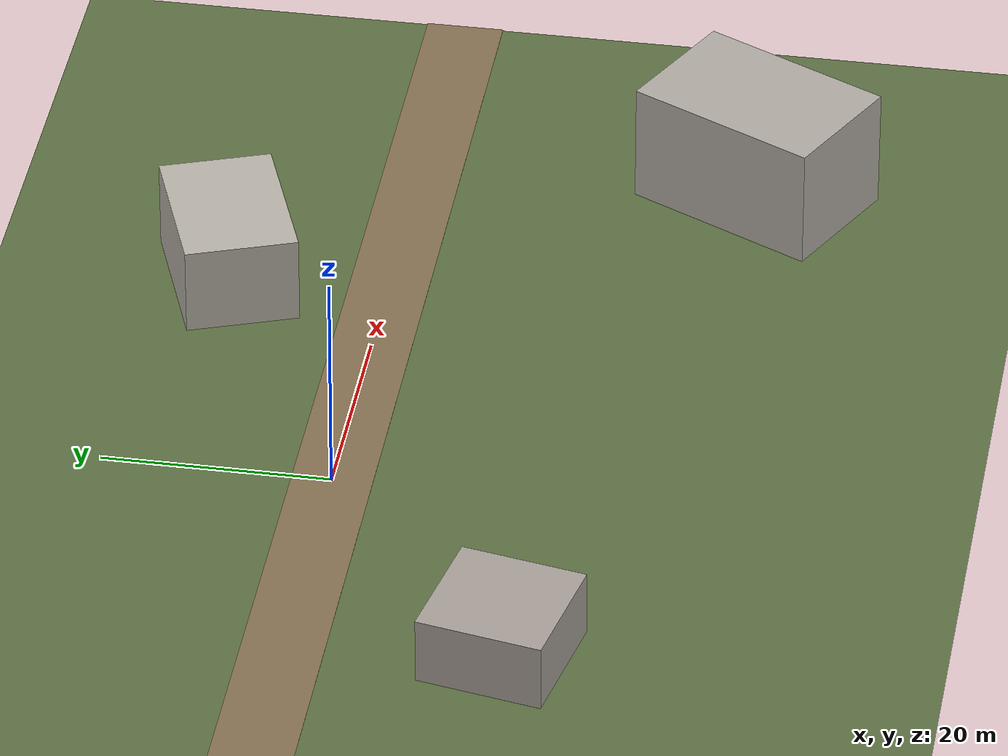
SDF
<?xml version="1.0" encoding="UTF-8"?>
<sdf version="1.9">
  <world name="recon_field">

    <physics type="ode">
      <max_step_size>0.004</max_step_size>
      <real_time_factor>1.0</real_time_factor>
      <real_time_update_rate>250</real_time_update_rate>
    </physics>
    <gravity>0 0 -9.8</gravity>
    <magnetic_field>6e-06 2.3e-05 -4.2e-05</magnetic_field>
    <atmosphere type="adiabatic"/>

    <scene>
      <grid>false</grid>
      <ambient>0.45 0.45 0.45 1</ambient>
      <background>0.62 0.72 0.85 1</background>
      <shadows>true</shadows>
    </scene>

    <light name="sunUTC" type="directional">
      <pose>0 0 500 0 0 0</pose>
      <cast_shadows>true</cast_shadows>
      <intensity>1</intensity>
      <direction>0.3 0.5 -0.81</direction>
      <diffuse>0.95 0.93 0.88 1</diffuse>
      <specular>0.3 0.3 0.3 1</specular>
      <attenuation>
        <range>2000</range>
        <linear>0</linear>
        <constant>1</constant>
        <quadratic>0</quadratic>
      </attenuation>
      <spot>
        <inner_angle>0</inner_angle>
        <outer_angle>0</outer_angle>
        <falloff>0</falloff>
      </spot>
    </light>

    <model name="ground_plane">
      <static>true</static>
      <link name="link">
        <collision name="collision">
          <geometry>
            <plane><normal>0 0 1</normal><size>1 1</size></plane>
          </geometry>
          <surface><friction><ode/></friction><bounce/><contact/></surface>
        </collision>
        <visual name="visual">
          <geometry>
            <plane><normal>0 0 1</normal><size>600 600</size></plane>
          </geometry>
          <material>
            <ambient>0.32 0.38 0.24 1</ambient>
            <diffuse>0.36 0.44 0.26 1</diffuse>
            <specular>0.05 0.05 0.05 1</specular>
          </material>
        </visual>
      </link>
    </model>

    <!-- A dirt track through the middle. It gives the detector a background
         that is not uniform grass, and it gives the pilot a landmark. -->
    <model name="track">
      <static>true</static>
      <pose>0 0 0.01 0 0 0</pose>
      <link name="link">
        <visual name="visual">
          <geometry>
            <box><size>240 7 0.02</size></box>
          </geometry>
          <material>
            <ambient>0.45 0.38 0.28 1</ambient>
            <diffuse>0.52 0.44 0.32 1</diffuse>
          </material>
        </visual>
      </link>
    </model>

    <!-- Three blocks. They occlude targets and give the rangefinder
         something other than flat ground to measure. -->
    <model name="block_a">
      <static>true</static>
      <pose>28 14 4 0 0 0.35</pose>
      <link name="link">
        <collision name="collision">
          <geometry><box><size>14 10 8</size></box></geometry>
        </collision>
        <visual name="visual">
          <geometry><box><size>14 10 8</size></box></geometry>
          <material>
            <ambient>0.62 0.60 0.56 1</ambient>
            <diffuse>0.72 0.70 0.66 1</diffuse>
          </material>
        </visual>
      </link>
    </model>

    <model name="block_b">
      <static>true</static>
      <pose>-22 -18 3 0 0 -0.2</pose>
      <link name="link">
        <collision name="collision">
          <geometry><box><size>11 11 6</size></box></geometry>
        </collision>
        <visual name="visual">
          <geometry><box><size>11 11 6</size></box></geometry>
          <material>
            <ambient>0.55 0.52 0.50 1</ambient>
            <diffuse>0.66 0.63 0.60 1</diffuse>
          </material>
        </visual>
      </link>
    </model>

    <model name="block_c">
      <static>true</static>
      <pose>48 -30 5.5 0 0 1.1</pose>
      <link name="link">
        <collision name="collision">
          <geometry><box><size>18 12 11</size></box></geometry>
        </collision>
        <visual name="visual">
          <geometry><box><size>18 12 11</size></box></geometry>
          <material>
            <ambient>0.58 0.56 0.53 1</ambient>
            <diffuse>0.69 0.67 0.64 1</diffuse>
          </material>
        </visual>
      </link>
    </model>

    <spherical_coordinates>
      <surface_model>EARTH_WGS84</surface_model>
      <world_frame_orientation>ENU</world_frame_orientation>
      <latitude_deg>38.9869</latitude_deg>
      <longitude_deg>-76.9426</longitude_deg>
      <elevation>20</elevation>
    </spherical_coordinates>

  </world>
</sdf>
